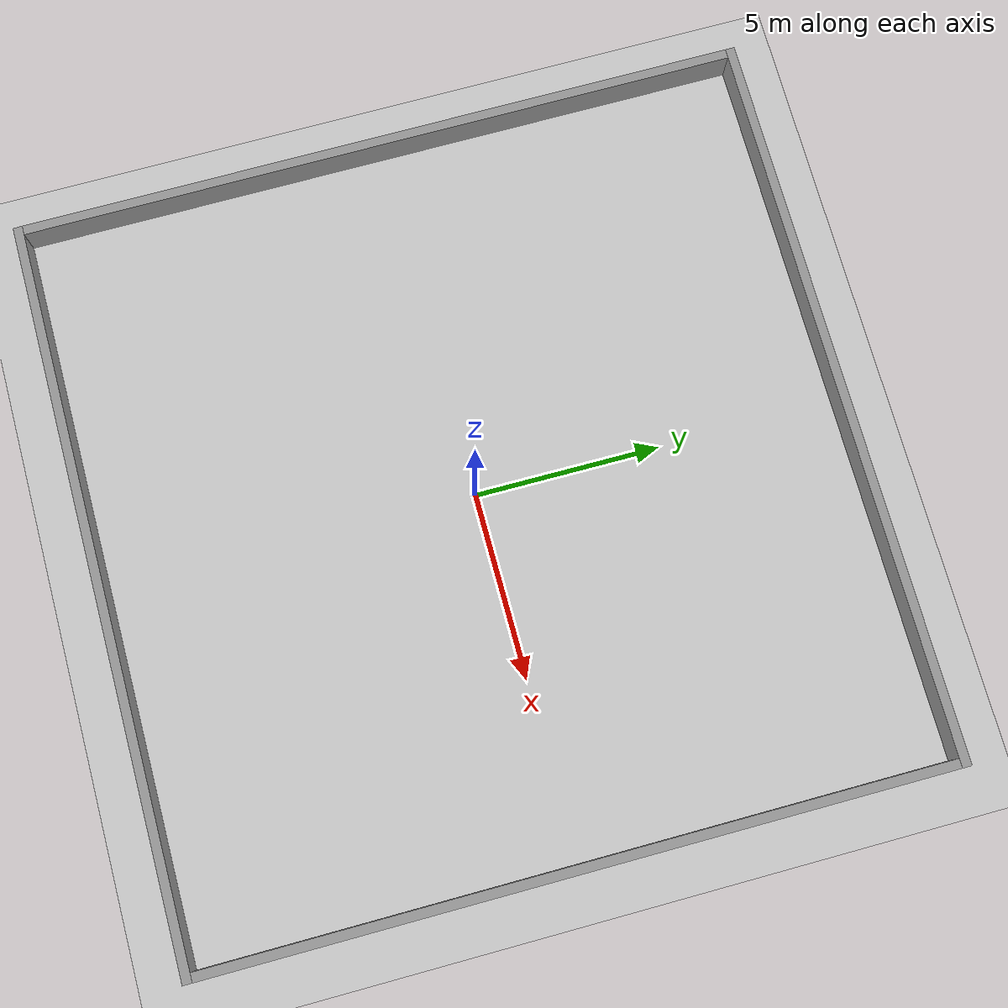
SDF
<?xml version="1.0"?>
<sdf version="1.4">
  <world name="myworld">
    <include>
		  <uri>model://sun</uri>
	  </include>

	  <include>
		  <uri>model://ground_plane</uri>
	  </include>

    <model name='unit_box_1'>
      <pose>0 -9.875 0.5 0 0 0</pose>
      <link name='link'>
        <collision name='collision'>
          <geometry>
            <box>
              <size>20 0.25 1</size>
            </box>
          </geometry>
        </collision>
        <visual name='visual'>
          <geometry>
            <box>
              <size>20 0.25 1</size>
            </box>
          </geometry>
          <material>
            <script>
              <uri>file://media/materials/scripts/gazebo.material</uri>
              <name>Gazebo/Grey</name>
            </script>
          </material>
        </visual>
        <gravity>0</gravity>
      </link>
      <static>1</static>
    </model>

    <model name='unit_box_2'>
      <pose>0 9.875 0.5 0 0 0</pose>
      <link name='link'>
        <collision name='collision'>
          <geometry>
            <box>
              <size>20 0.25 1</size>
            </box>
          </geometry>
        </collision>
        <visual name='visual'>
          <geometry>
            <box>
              <size>20 0.25 1</size>
            </box>
          </geometry>
          <material>
            <script>
              <uri>file://media/materials/scripts/gazebo.material</uri>
              <name>Gazebo/Grey</name>
            </script>
          </material>
        </visual>
        <gravity>0</gravity>
      </link>
      <static>1</static>
    </model>

    <model name='unit_box_3'>
      <pose>-9.875 0 0.5 0 0 0</pose>
      <link name='link'>
        <collision name='collision'>
          <geometry>
            <box>
              <size>0.25 19.5 1</size>
            </box>
          </geometry>
        </collision>
        <visual name='visual'>
          <geometry>
            <box>
              <size>0.25 19.5 1</size>
            </box>
          </geometry>
          <material>
            <script>
              <uri>file://media/materials/scripts/gazebo.material</uri>
              <name>Gazebo/Grey</name>
            </script>
          </material>
        </visual>
        <gravity>0</gravity>
      </link>
      <static>1</static>
    </model>

    <model name='unit_box_4'>
      <pose>9.875 0 0.5 0 0 0</pose>
      <link name='link'>
        <collision name='collision'>
          <geometry>
            <box>
              <size>0.25 19.5 1</size>
            </box>
          </geometry>
        </collision>
        <visual name='visual'>
          <geometry>
            <box>
              <size>0.25 19.5 1</size>
            </box>
          </geometry>
          <material>
            <script>
              <uri>file://media/materials/scripts/gazebo.material</uri>
              <name>Gazebo/Grey</name>
            </script>
          </material>
        </visual>
        <gravity>0</gravity>
      </link>
      <static>1</static>
    </model>

  </world>
</sdf>
